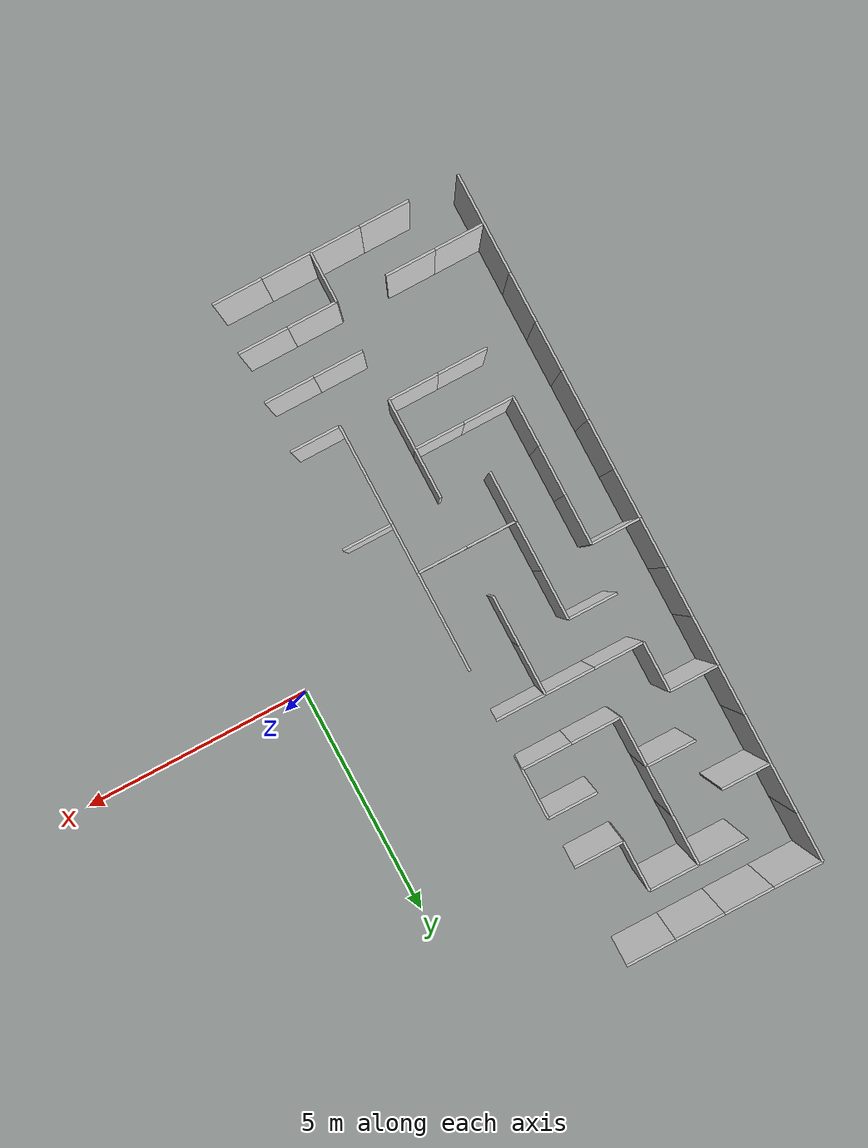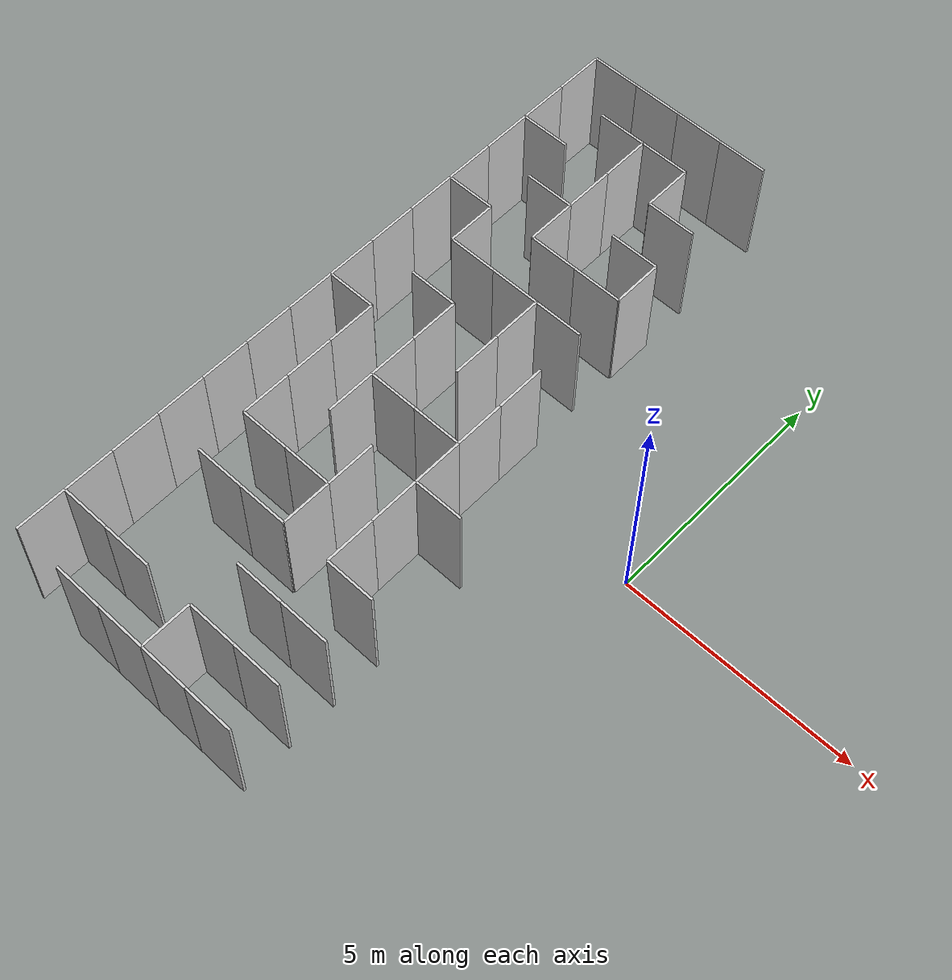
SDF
<sdf version="1.10">
 <world name="nidar_layer1_maze">
  <model name="vwall_00_00">
   <static>true</static>
   <pose>-7.3500 -6.8250 1.2500 0 0 0</pose>
   <link name="link">
    <collision name="collision"><geometry><box><size>0.0500 1.0500 2.5000</size></box></geometry></collision>
    <visual name="visual">
     <geometry><box><size>0.0500 1.0500 2.5000</size></box></geometry>
     <material><ambient>0.72 0.72 0.72 1</ambient><diffuse>0.82 0.82 0.82 1</diffuse></material>
    </visual>
   </link>
  </model>
  <model name="vwall_03_00">
   <static>true</static>
   <pose>-4.2000 -6.8250 1.2500 0 0 0</pose>
   <link name="link">
    <collision name="collision"><geometry><box><size>0.0500 1.0500 2.5000</size></box></geometry></collision>
    <visual name="visual">
     <geometry><box><size>0.0500 1.0500 2.5000</size></box></geometry>
     <material><ambient>0.72 0.72 0.72 1</ambient><diffuse>0.82 0.82 0.82 1</diffuse></material>
    </visual>
   </link>
  </model>
  <model name="vwall_00_01">
   <static>true</static>
   <pose>-7.3500 -5.7750 1.2500 0 0 0</pose>
   <link name="link">
    <collision name="collision"><geometry><box><size>0.0500 1.0500 2.5000</size></box></geometry></collision>
    <visual name="visual">
     <geometry><box><size>0.0500 1.0500 2.5000</size></box></geometry>
     <material><ambient>0.72 0.72 0.72 1</ambient><diffuse>0.82 0.82 0.82 1</diffuse></material>
    </visual>
   </link>
  </model>
  <model name="vwall_00_02">
   <static>true</static>
   <pose>-7.3500 -4.7250 1.2500 0 0 0</pose>
   <link name="link">
    <collision name="collision"><geometry><box><size>0.0500 1.0500 2.5000</size></box></geometry></collision>
    <visual name="visual">
     <geometry><box><size>0.0500 1.0500 2.5000</size></box></geometry>
     <material><ambient>0.72 0.72 0.72 1</ambient><diffuse>0.82 0.82 0.82 1</diffuse></material>
    </visual>
   </link>
  </model>
  <model name="vwall_00_03">
   <static>true</static>
   <pose>-7.3500 -3.6750 1.2500 0 0 0</pose>
   <link name="link">
    <collision name="collision"><geometry><box><size>0.0500 1.0500 2.5000</size></box></geometry></collision>
    <visual name="visual">
     <geometry><box><size>0.0500 1.0500 2.5000</size></box></geometry>
     <material><ambient>0.72 0.72 0.72 1</ambient><diffuse>0.82 0.82 0.82 1</diffuse></material>
    </visual>
   </link>
  </model>
  <model name="vwall_03_03">
   <static>true</static>
   <pose>-4.2000 -3.6750 1.2500 0 0 0</pose>
   <link name="link">
    <collision name="collision"><geometry><box><size>0.0500 1.0500 2.5000</size></box></geometry></collision>
    <visual name="visual">
     <geometry><box><size>0.0500 1.0500 2.5000</size></box></geometry>
     <material><ambient>0.72 0.72 0.72 1</ambient><diffuse>0.82 0.82 0.82 1</diffuse></material>
    </visual>
   </link>
  </model>
  <model name="vwall_04_03">
   <static>true</static>
   <pose>-3.1500 -3.6750 1.2500 0 0 0</pose>
   <link name="link">
    <collision name="collision"><geometry><box><size>0.0500 1.0500 2.5000</size></box></geometry></collision>
    <visual name="visual">
     <geometry><box><size>0.0500 1.0500 2.5000</size></box></geometry>
     <material><ambient>0.72 0.72 0.72 1</ambient><diffuse>0.82 0.82 0.82 1</diffuse></material>
    </visual>
   </link>
  </model>
  <model name="vwall_00_04">
   <static>true</static>
   <pose>-7.3500 -2.6250 1.2500 0 0 0</pose>
   <link name="link">
    <collision name="collision"><geometry><box><size>0.0500 1.0500 2.5000</size></box></geometry></collision>
    <visual name="visual">
     <geometry><box><size>0.0500 1.0500 2.5000</size></box></geometry>
     <material><ambient>0.72 0.72 0.72 1</ambient><diffuse>0.82 0.82 0.82 1</diffuse></material>
    </visual>
   </link>
  </model>
  <model name="vwall_01_04">
   <static>true</static>
   <pose>-6.3000 -2.6250 1.2500 0 0 0</pose>
   <link name="link">
    <collision name="collision"><geometry><box><size>0.0500 1.0500 2.5000</size></box></geometry></collision>
    <visual name="visual">
     <geometry><box><size>0.0500 1.0500 2.5000</size></box></geometry>
     <material><ambient>0.72 0.72 0.72 1</ambient><diffuse>0.82 0.82 0.82 1</diffuse></material>
    </visual>
   </link>
  </model>
  <model name="vwall_03_04">
   <static>true</static>
   <pose>-4.2000 -2.6250 1.2500 0 0 0</pose>
   <link name="link">
    <collision name="collision"><geometry><box><size>0.0500 1.0500 2.5000</size></box></geometry></collision>
    <visual name="visual">
     <geometry><box><size>0.0500 1.0500 2.5000</size></box></geometry>
     <material><ambient>0.72 0.72 0.72 1</ambient><diffuse>0.82 0.82 0.82 1</diffuse></material>
    </visual>
   </link>
  </model>
  <model name="vwall_04_04">
   <static>true</static>
   <pose>-3.1500 -2.6250 1.2500 0 0 0</pose>
   <link name="link">
    <collision name="collision"><geometry><box><size>0.0500 1.0500 2.5000</size></box></geometry></collision>
    <visual name="visual">
     <geometry><box><size>0.0500 1.0500 2.5000</size></box></geometry>
     <material><ambient>0.72 0.72 0.72 1</ambient><diffuse>0.82 0.82 0.82 1</diffuse></material>
    </visual>
   </link>
  </model>
  <model name="vwall_00_05">
   <static>true</static>
   <pose>-7.3500 -1.5750 1.2500 0 0 0</pose>
   <link name="link">
    <collision name="collision"><geometry><box><size>0.0500 1.0500 2.5000</size></box></geometry></collision>
    <visual name="visual">
     <geometry><box><size>0.0500 1.0500 2.5000</size></box></geometry>
     <material><ambient>0.72 0.72 0.72 1</ambient><diffuse>0.82 0.82 0.82 1</diffuse></material>
    </visual>
   </link>
  </model>
  <model name="vwall_01_05">
   <static>true</static>
   <pose>-6.3000 -1.5750 1.2500 0 0 0</pose>
   <link name="link">
    <collision name="collision"><geometry><box><size>0.0500 1.0500 2.5000</size></box></geometry></collision>
    <visual name="visual">
     <geometry><box><size>0.0500 1.0500 2.5000</size></box></geometry>
     <material><ambient>0.72 0.72 0.72 1</ambient><diffuse>0.82 0.82 0.82 1</diffuse></material>
    </visual>
   </link>
  </model>
  <model name="vwall_02_05">
   <static>true</static>
   <pose>-5.2500 -1.5750 1.2500 0 0 0</pose>
   <link name="link">
    <collision name="collision"><geometry><box><size>0.0500 1.0500 2.5000</size></box></geometry></collision>
    <visual name="visual">
     <geometry><box><size>0.0500 1.0500 2.5000</size></box></geometry>
     <material><ambient>0.72 0.72 0.72 1</ambient><diffuse>0.82 0.82 0.82 1</diffuse></material>
    </visual>
   </link>
  </model>
  <model name="vwall_04_05">
   <static>true</static>
   <pose>-3.1500 -1.5750 1.2500 0 0 0</pose>
   <link name="link">
    <collision name="collision"><geometry><box><size>0.0500 1.0500 2.5000</size></box></geometry></collision>
    <visual name="visual">
     <geometry><box><size>0.0500 1.0500 2.5000</size></box></geometry>
     <material><ambient>0.72 0.72 0.72 1</ambient><diffuse>0.82 0.82 0.82 1</diffuse></material>
    </visual>
   </link>
  </model>
  <model name="vwall_00_06">
   <static>true</static>
   <pose>-7.3500 -0.5250 1.2500 0 0 0</pose>
   <link name="link">
    <collision name="collision"><geometry><box><size>0.0500 1.0500 2.5000</size></box></geometry></collision>
    <visual name="visual">
     <geometry><box><size>0.0500 1.0500 2.5000</size></box></geometry>
     <material><ambient>0.72 0.72 0.72 1</ambient><diffuse>0.82 0.82 0.82 1</diffuse></material>
    </visual>
   </link>
  </model>
  <model name="vwall_01_06">
   <static>true</static>
   <pose>-6.3000 -0.5250 1.2500 0 0 0</pose>
   <link name="link">
    <collision name="collision"><geometry><box><size>0.0500 1.0500 2.5000</size></box></geometry></collision>
    <visual name="visual">
     <geometry><box><size>0.0500 1.0500 2.5000</size></box></geometry>
     <material><ambient>0.72 0.72 0.72 1</ambient><diffuse>0.82 0.82 0.82 1</diffuse></material>
    </visual>
   </link>
  </model>
  <model name="vwall_02_06">
   <static>true</static>
   <pose>-5.2500 -0.5250 1.2500 0 0 0</pose>
   <link name="link">
    <collision name="collision"><geometry><box><size>0.0500 1.0500 2.5000</size></box></geometry></collision>
    <visual name="visual">
     <geometry><box><size>0.0500 1.0500 2.5000</size></box></geometry>
     <material><ambient>0.72 0.72 0.72 1</ambient><diffuse>0.82 0.82 0.82 1</diffuse></material>
    </visual>
   </link>
  </model>
  <model name="vwall_04_06">
   <static>true</static>
   <pose>-3.1500 -0.5250 1.2500 0 0 0</pose>
   <link name="link">
    <collision name="collision"><geometry><box><size>0.0500 1.0500 2.5000</size></box></geometry></collision>
    <visual name="visual">
     <geometry><box><size>0.0500 1.0500 2.5000</size></box></geometry>
     <material><ambient>0.72 0.72 0.72 1</ambient><diffuse>0.82 0.82 0.82 1</diffuse></material>
    </visual>
   </link>
  </model>
  <model name="vwall_00_07">
   <static>true</static>
   <pose>-7.3500 0.5250 1.2500 0 0 0</pose>
   <link name="link">
    <collision name="collision"><geometry><box><size>0.0500 1.0500 2.5000</size></box></geometry></collision>
    <visual name="visual">
     <geometry><box><size>0.0500 1.0500 2.5000</size></box></geometry>
     <material><ambient>0.72 0.72 0.72 1</ambient><diffuse>0.82 0.82 0.82 1</diffuse></material>
    </visual>
   </link>
  </model>
  <model name="vwall_02_07">
   <static>true</static>
   <pose>-5.2500 0.5250 1.2500 0 0 0</pose>
   <link name="link">
    <collision name="collision"><geometry><box><size>0.0500 1.0500 2.5000</size></box></geometry></collision>
    <visual name="visual">
     <geometry><box><size>0.0500 1.0500 2.5000</size></box></geometry>
     <material><ambient>0.72 0.72 0.72 1</ambient><diffuse>0.82 0.82 0.82 1</diffuse></material>
    </visual>
   </link>
  </model>
  <model name="vwall_03_07">
   <static>true</static>
   <pose>-4.2000 0.5250 1.2500 0 0 0</pose>
   <link name="link">
    <collision name="collision"><geometry><box><size>0.0500 1.0500 2.5000</size></box></geometry></collision>
    <visual name="visual">
     <geometry><box><size>0.0500 1.0500 2.5000</size></box></geometry>
     <material><ambient>0.72 0.72 0.72 1</ambient><diffuse>0.82 0.82 0.82 1</diffuse></material>
    </visual>
   </link>
  </model>
  <model name="vwall_04_07">
   <static>true</static>
   <pose>-3.1500 0.5250 1.2500 0 0 0</pose>
   <link name="link">
    <collision name="collision"><geometry><box><size>0.0500 1.0500 2.5000</size></box></geometry></collision>
    <visual name="visual">
     <geometry><box><size>0.0500 1.0500 2.5000</size></box></geometry>
     <material><ambient>0.72 0.72 0.72 1</ambient><diffuse>0.82 0.82 0.82 1</diffuse></material>
    </visual>
   </link>
  </model>
  <model name="vwall_00_08">
   <static>true</static>
   <pose>-7.3500 1.5750 1.2500 0 0 0</pose>
   <link name="link">
    <collision name="collision"><geometry><box><size>0.0500 1.0500 2.5000</size></box></geometry></collision>
    <visual name="visual">
     <geometry><box><size>0.0500 1.0500 2.5000</size></box></geometry>
     <material><ambient>0.72 0.72 0.72 1</ambient><diffuse>0.82 0.82 0.82 1</diffuse></material>
    </visual>
   </link>
  </model>
  <model name="vwall_03_08">
   <static>true</static>
   <pose>-4.2000 1.5750 1.2500 0 0 0</pose>
   <link name="link">
    <collision name="collision"><geometry><box><size>0.0500 1.0500 2.5000</size></box></geometry></collision>
    <visual name="visual">
     <geometry><box><size>0.0500 1.0500 2.5000</size></box></geometry>
     <material><ambient>0.72 0.72 0.72 1</ambient><diffuse>0.82 0.82 0.82 1</diffuse></material>
    </visual>
   </link>
  </model>
  <model name="vwall_00_09">
   <static>true</static>
   <pose>-7.3500 2.6250 1.2500 0 0 0</pose>
   <link name="link">
    <collision name="collision"><geometry><box><size>0.0500 1.0500 2.5000</size></box></geometry></collision>
    <visual name="visual">
     <geometry><box><size>0.0500 1.0500 2.5000</size></box></geometry>
     <material><ambient>0.72 0.72 0.72 1</ambient><diffuse>0.82 0.82 0.82 1</diffuse></material>
    </visual>
   </link>
  </model>
  <model name="vwall_01_09">
   <static>true</static>
   <pose>-6.3000 2.6250 1.2500 0 0 0</pose>
   <link name="link">
    <collision name="collision"><geometry><box><size>0.0500 1.0500 2.5000</size></box></geometry></collision>
    <visual name="visual">
     <geometry><box><size>0.0500 1.0500 2.5000</size></box></geometry>
     <material><ambient>0.72 0.72 0.72 1</ambient><diffuse>0.82 0.82 0.82 1</diffuse></material>
    </visual>
   </link>
  </model>
  <model name="vwall_00_10">
   <static>true</static>
   <pose>-7.3500 3.6750 1.2500 0 0 0</pose>
   <link name="link">
    <collision name="collision"><geometry><box><size>0.0500 1.0500 2.5000</size></box></geometry></collision>
    <visual name="visual">
     <geometry><box><size>0.0500 1.0500 2.5000</size></box></geometry>
     <material><ambient>0.72 0.72 0.72 1</ambient><diffuse>0.82 0.82 0.82 1</diffuse></material>
    </visual>
   </link>
  </model>
  <model name="vwall_02_10">
   <static>true</static>
   <pose>-5.2500 3.6750 1.2500 0 0 0</pose>
   <link name="link">
    <collision name="collision"><geometry><box><size>0.0500 1.0500 2.5000</size></box></geometry></collision>
    <visual name="visual">
     <geometry><box><size>0.0500 1.0500 2.5000</size></box></geometry>
     <material><ambient>0.72 0.72 0.72 1</ambient><diffuse>0.82 0.82 0.82 1</diffuse></material>
    </visual>
   </link>
  </model>
  <model name="vwall_04_10">
   <static>true</static>
   <pose>-3.1500 3.6750 1.2500 0 0 0</pose>
   <link name="link">
    <collision name="collision"><geometry><box><size>0.0500 1.0500 2.5000</size></box></geometry></collision>
    <visual name="visual">
     <geometry><box><size>0.0500 1.0500 2.5000</size></box></geometry>
     <material><ambient>0.72 0.72 0.72 1</ambient><diffuse>0.82 0.82 0.82 1</diffuse></material>
    </visual>
   </link>
  </model>
  <model name="vwall_00_11">
   <static>true</static>
   <pose>-7.3500 4.7250 1.2500 0 0 0</pose>
   <link name="link">
    <collision name="collision"><geometry><box><size>0.0500 1.0500 2.5000</size></box></geometry></collision>
    <visual name="visual">
     <geometry><box><size>0.0500 1.0500 2.5000</size></box></geometry>
     <material><ambient>0.72 0.72 0.72 1</ambient><diffuse>0.82 0.82 0.82 1</diffuse></material>
    </visual>
   </link>
  </model>
  <model name="vwall_02_11">
   <static>true</static>
   <pose>-5.2500 4.7250 1.2500 0 0 0</pose>
   <link name="link">
    <collision name="collision"><geometry><box><size>0.0500 1.0500 2.5000</size></box></geometry></collision>
    <visual name="visual">
     <geometry><box><size>0.0500 1.0500 2.5000</size></box></geometry>
     <material><ambient>0.72 0.72 0.72 1</ambient><diffuse>0.82 0.82 0.82 1</diffuse></material>
    </visual>
   </link>
  </model>
  <model name="vwall_00_12">
   <static>true</static>
   <pose>-7.3500 5.7750 1.2500 0 0 0</pose>
   <link name="link">
    <collision name="collision"><geometry><box><size>0.0500 1.0500 2.5000</size></box></geometry></collision>
    <visual name="visual">
     <geometry><box><size>0.0500 1.0500 2.5000</size></box></geometry>
     <material><ambient>0.72 0.72 0.72 1</ambient><diffuse>0.82 0.82 0.82 1</diffuse></material>
    </visual>
   </link>
  </model>
  <model name="vwall_02_12">
   <static>true</static>
   <pose>-5.2500 5.7750 1.2500 0 0 0</pose>
   <link name="link">
    <collision name="collision"><geometry><box><size>0.0500 1.0500 2.5000</size></box></geometry></collision>
    <visual name="visual">
     <geometry><box><size>0.0500 1.0500 2.5000</size></box></geometry>
     <material><ambient>0.72 0.72 0.72 1</ambient><diffuse>0.82 0.82 0.82 1</diffuse></material>
    </visual>
   </link>
  </model>
  <model name="vwall_03_12">
   <static>true</static>
   <pose>-4.2000 5.7750 1.2500 0 0 0</pose>
   <link name="link">
    <collision name="collision"><geometry><box><size>0.0500 1.0500 2.5000</size></box></geometry></collision>
    <visual name="visual">
     <geometry><box><size>0.0500 1.0500 2.5000</size></box></geometry>
     <material><ambient>0.72 0.72 0.72 1</ambient><diffuse>0.82 0.82 0.82 1</diffuse></material>
    </visual>
   </link>
  </model>
  <model name="vwall_00_13">
   <static>true</static>
   <pose>-7.3500 6.8250 1.2500 0 0 0</pose>
   <link name="link">
    <collision name="collision"><geometry><box><size>0.0500 1.0500 2.5000</size></box></geometry></collision>
    <visual name="visual">
     <geometry><box><size>0.0500 1.0500 2.5000</size></box></geometry>
     <material><ambient>0.72 0.72 0.72 1</ambient><diffuse>0.82 0.82 0.82 1</diffuse></material>
    </visual>
   </link>
  </model>
  <model name="hwall_01_00">
   <static>true</static>
   <pose>-5.7750 -7.3500 1.2500 0 0 0</pose>
   <link name="link">
    <collision name="collision"><geometry><box><size>1.0500 0.0500 2.5000</size></box></geometry></collision>
    <visual name="visual">
     <geometry><box><size>1.0500 0.0500 2.5000</size></box></geometry>
     <material><ambient>0.72 0.72 0.72 1</ambient><diffuse>0.82 0.82 0.82 1</diffuse></material>
    </visual>
   </link>
  </model>
  <model name="hwall_02_00">
   <static>true</static>
   <pose>-4.7250 -7.3500 1.2500 0 0 0</pose>
   <link name="link">
    <collision name="collision"><geometry><box><size>1.0500 0.0500 2.5000</size></box></geometry></collision>
    <visual name="visual">
     <geometry><box><size>1.0500 0.0500 2.5000</size></box></geometry>
     <material><ambient>0.72 0.72 0.72 1</ambient><diffuse>0.82 0.82 0.82 1</diffuse></material>
    </visual>
   </link>
  </model>
  <model name="hwall_03_00">
   <static>true</static>
   <pose>-3.6750 -7.3500 1.2500 0 0 0</pose>
   <link name="link">
    <collision name="collision"><geometry><box><size>1.0500 0.0500 2.5000</size></box></geometry></collision>
    <visual name="visual">
     <geometry><box><size>1.0500 0.0500 2.5000</size></box></geometry>
     <material><ambient>0.72 0.72 0.72 1</ambient><diffuse>0.82 0.82 0.82 1</diffuse></material>
    </visual>
   </link>
  </model>
  <model name="hwall_04_00">
   <static>true</static>
   <pose>-2.6250 -7.3500 1.2500 0 0 0</pose>
   <link name="link">
    <collision name="collision"><geometry><box><size>1.0500 0.0500 2.5000</size></box></geometry></collision>
    <visual name="visual">
     <geometry><box><size>1.0500 0.0500 2.5000</size></box></geometry>
     <material><ambient>0.72 0.72 0.72 1</ambient><diffuse>0.82 0.82 0.82 1</diffuse></material>
    </visual>
   </link>
  </model>
  <model name="hwall_00_01">
   <static>true</static>
   <pose>-6.8250 -6.3000 1.2500 0 0 0</pose>
   <link name="link">
    <collision name="collision"><geometry><box><size>1.0500 0.0500 2.5000</size></box></geometry></collision>
    <visual name="visual">
     <geometry><box><size>1.0500 0.0500 2.5000</size></box></geometry>
     <material><ambient>0.72 0.72 0.72 1</ambient><diffuse>0.82 0.82 0.82 1</diffuse></material>
    </visual>
   </link>
  </model>
  <model name="hwall_01_01">
   <static>true</static>
   <pose>-5.7750 -6.3000 1.2500 0 0 0</pose>
   <link name="link">
    <collision name="collision"><geometry><box><size>1.0500 0.0500 2.5000</size></box></geometry></collision>
    <visual name="visual">
     <geometry><box><size>1.0500 0.0500 2.5000</size></box></geometry>
     <material><ambient>0.72 0.72 0.72 1</ambient><diffuse>0.82 0.82 0.82 1</diffuse></material>
    </visual>
   </link>
  </model>
  <model name="hwall_03_01">
   <static>true</static>
   <pose>-3.6750 -6.3000 1.2500 0 0 0</pose>
   <link name="link">
    <collision name="collision"><geometry><box><size>1.0500 0.0500 2.5000</size></box></geometry></collision>
    <visual name="visual">
     <geometry><box><size>1.0500 0.0500 2.5000</size></box></geometry>
     <material><ambient>0.72 0.72 0.72 1</ambient><diffuse>0.82 0.82 0.82 1</diffuse></material>
    </visual>
   </link>
  </model>
  <model name="hwall_04_01">
   <static>true</static>
   <pose>-2.6250 -6.3000 1.2500 0 0 0</pose>
   <link name="link">
    <collision name="collision"><geometry><box><size>1.0500 0.0500 2.5000</size></box></geometry></collision>
    <visual name="visual">
     <geometry><box><size>1.0500 0.0500 2.5000</size></box></geometry>
     <material><ambient>0.72 0.72 0.72 1</ambient><diffuse>0.82 0.82 0.82 1</diffuse></material>
    </visual>
   </link>
  </model>
  <model name="hwall_03_02">
   <static>true</static>
   <pose>-3.6750 -5.2500 1.2500 0 0 0</pose>
   <link name="link">
    <collision name="collision"><geometry><box><size>1.0500 0.0500 2.5000</size></box></geometry></collision>
    <visual name="visual">
     <geometry><box><size>1.0500 0.0500 2.5000</size></box></geometry>
     <material><ambient>0.72 0.72 0.72 1</ambient><diffuse>0.82 0.82 0.82 1</diffuse></material>
    </visual>
   </link>
  </model>
  <model name="hwall_04_02">
   <static>true</static>
   <pose>-2.6250 -5.2500 1.2500 0 0 0</pose>
   <link name="link">
    <collision name="collision"><geometry><box><size>1.0500 0.0500 2.5000</size></box></geometry></collision>
    <visual name="visual">
     <geometry><box><size>1.0500 0.0500 2.5000</size></box></geometry>
     <material><ambient>0.72 0.72 0.72 1</ambient><diffuse>0.82 0.82 0.82 1</diffuse></material>
    </visual>
   </link>
  </model>
  <model name="hwall_01_03">
   <static>true</static>
   <pose>-5.7750 -4.2000 1.2500 0 0 0</pose>
   <link name="link">
    <collision name="collision"><geometry><box><size>1.0500 0.0500 2.5000</size></box></geometry></collision>
    <visual name="visual">
     <geometry><box><size>1.0500 0.0500 2.5000</size></box></geometry>
     <material><ambient>0.72 0.72 0.72 1</ambient><diffuse>0.82 0.82 0.82 1</diffuse></material>
    </visual>
   </link>
  </model>
  <model name="hwall_02_03">
   <static>true</static>
   <pose>-4.7250 -4.2000 1.2500 0 0 0</pose>
   <link name="link">
    <collision name="collision"><geometry><box><size>1.0500 0.0500 2.5000</size></box></geometry></collision>
    <visual name="visual">
     <geometry><box><size>1.0500 0.0500 2.5000</size></box></geometry>
     <material><ambient>0.72 0.72 0.72 1</ambient><diffuse>0.82 0.82 0.82 1</diffuse></material>
    </visual>
   </link>
  </model>
  <model name="hwall_04_03">
   <static>true</static>
   <pose>-2.6250 -4.2000 1.2500 0 0 0</pose>
   <link name="link">
    <collision name="collision"><geometry><box><size>1.0500 0.0500 2.5000</size></box></geometry></collision>
    <visual name="visual">
     <geometry><box><size>1.0500 0.0500 2.5000</size></box></geometry>
     <material><ambient>0.72 0.72 0.72 1</ambient><diffuse>0.82 0.82 0.82 1</diffuse></material>
    </visual>
   </link>
  </model>
  <model name="hwall_01_04">
   <static>true</static>
   <pose>-5.7750 -3.1500 1.2500 0 0 0</pose>
   <link name="link">
    <collision name="collision"><geometry><box><size>1.0500 0.0500 2.5000</size></box></geometry></collision>
    <visual name="visual">
     <geometry><box><size>1.0500 0.0500 2.5000</size></box></geometry>
     <material><ambient>0.72 0.72 0.72 1</ambient><diffuse>0.82 0.82 0.82 1</diffuse></material>
    </visual>
   </link>
  </model>
  <model name="hwall_02_04">
   <static>true</static>
   <pose>-4.7250 -3.1500 1.2500 0 0 0</pose>
   <link name="link">
    <collision name="collision"><geometry><box><size>1.0500 0.0500 2.5000</size></box></geometry></collision>
    <visual name="visual">
     <geometry><box><size>1.0500 0.0500 2.5000</size></box></geometry>
     <material><ambient>0.72 0.72 0.72 1</ambient><diffuse>0.82 0.82 0.82 1</diffuse></material>
    </visual>
   </link>
  </model>
  <model name="hwall_04_05">
   <static>true</static>
   <pose>-2.6250 -2.1000 1.2500 0 0 0</pose>
   <link name="link">
    <collision name="collision"><geometry><box><size>1.0500 0.0500 2.5000</size></box></geometry></collision>
    <visual name="visual">
     <geometry><box><size>1.0500 0.0500 2.5000</size></box></geometry>
     <material><ambient>0.72 0.72 0.72 1</ambient><diffuse>0.82 0.82 0.82 1</diffuse></material>
    </visual>
   </link>
  </model>
  <model name="hwall_02_06">
   <static>true</static>
   <pose>-4.7250 -1.0500 1.2500 0 0 0</pose>
   <link name="link">
    <collision name="collision"><geometry><box><size>1.0500 0.0500 2.5000</size></box></geometry></collision>
    <visual name="visual">
     <geometry><box><size>1.0500 0.0500 2.5000</size></box></geometry>
     <material><ambient>0.72 0.72 0.72 1</ambient><diffuse>0.82 0.82 0.82 1</diffuse></material>
    </visual>
   </link>
  </model>
  <model name="hwall_03_06">
   <static>true</static>
   <pose>-3.6750 -1.0500 1.2500 0 0 0</pose>
   <link name="link">
    <collision name="collision"><geometry><box><size>1.0500 0.0500 2.5000</size></box></geometry></collision>
    <visual name="visual">
     <geometry><box><size>1.0500 0.0500 2.5000</size></box></geometry>
     <material><ambient>0.72 0.72 0.72 1</ambient><diffuse>0.82 0.82 0.82 1</diffuse></material>
    </visual>
   </link>
  </model>
  <model name="hwall_00_07">
   <static>true</static>
   <pose>-6.8250 0.0000 1.2500 0 0 0</pose>
   <link name="link">
    <collision name="collision"><geometry><box><size>1.0500 0.0500 2.5000</size></box></geometry></collision>
    <visual name="visual">
     <geometry><box><size>1.0500 0.0500 2.5000</size></box></geometry>
     <material><ambient>0.72 0.72 0.72 1</ambient><diffuse>0.82 0.82 0.82 1</diffuse></material>
    </visual>
   </link>
  </model>
  <model name="hwall_01_08">
   <static>true</static>
   <pose>-5.7750 1.0500 1.2500 0 0 0</pose>
   <link name="link">
    <collision name="collision"><geometry><box><size>1.0500 0.0500 2.5000</size></box></geometry></collision>
    <visual name="visual">
     <geometry><box><size>1.0500 0.0500 2.5000</size></box></geometry>
     <material><ambient>0.72 0.72 0.72 1</ambient><diffuse>0.82 0.82 0.82 1</diffuse></material>
    </visual>
   </link>
  </model>
  <model name="hwall_01_09">
   <static>true</static>
   <pose>-5.7750 2.1000 1.2500 0 0 0</pose>
   <link name="link">
    <collision name="collision"><geometry><box><size>1.0500 0.0500 2.5000</size></box></geometry></collision>
    <visual name="visual">
     <geometry><box><size>1.0500 0.0500 2.5000</size></box></geometry>
     <material><ambient>0.72 0.72 0.72 1</ambient><diffuse>0.82 0.82 0.82 1</diffuse></material>
    </visual>
   </link>
  </model>
  <model name="hwall_02_09">
   <static>true</static>
   <pose>-4.7250 2.1000 1.2500 0 0 0</pose>
   <link name="link">
    <collision name="collision"><geometry><box><size>1.0500 0.0500 2.5000</size></box></geometry></collision>
    <visual name="visual">
     <geometry><box><size>1.0500 0.0500 2.5000</size></box></geometry>
     <material><ambient>0.72 0.72 0.72 1</ambient><diffuse>0.82 0.82 0.82 1</diffuse></material>
    </visual>
   </link>
  </model>
  <model name="hwall_03_09">
   <static>true</static>
   <pose>-3.6750 2.1000 1.2500 0 0 0</pose>
   <link name="link">
    <collision name="collision"><geometry><box><size>1.0500 0.0500 2.5000</size></box></geometry></collision>
    <visual name="visual">
     <geometry><box><size>1.0500 0.0500 2.5000</size></box></geometry>
     <material><ambient>0.72 0.72 0.72 1</ambient><diffuse>0.82 0.82 0.82 1</diffuse></material>
    </visual>
   </link>
  </model>
  <model name="hwall_00_10">
   <static>true</static>
   <pose>-6.8250 3.1500 1.2500 0 0 0</pose>
   <link name="link">
    <collision name="collision"><geometry><box><size>1.0500 0.0500 2.5000</size></box></geometry></collision>
    <visual name="visual">
     <geometry><box><size>1.0500 0.0500 2.5000</size></box></geometry>
     <material><ambient>0.72 0.72 0.72 1</ambient><diffuse>0.82 0.82 0.82 1</diffuse></material>
    </visual>
   </link>
  </model>
  <model name="hwall_02_10">
   <static>true</static>
   <pose>-4.7250 3.1500 1.2500 0 0 0</pose>
   <link name="link">
    <collision name="collision"><geometry><box><size>1.0500 0.0500 2.5000</size></box></geometry></collision>
    <visual name="visual">
     <geometry><box><size>1.0500 0.0500 2.5000</size></box></geometry>
     <material><ambient>0.72 0.72 0.72 1</ambient><diffuse>0.82 0.82 0.82 1</diffuse></material>
    </visual>
   </link>
  </model>
  <model name="hwall_03_10">
   <static>true</static>
   <pose>-3.6750 3.1500 1.2500 0 0 0</pose>
   <link name="link">
    <collision name="collision"><geometry><box><size>1.0500 0.0500 2.5000</size></box></geometry></collision>
    <visual name="visual">
     <geometry><box><size>1.0500 0.0500 2.5000</size></box></geometry>
     <material><ambient>0.72 0.72 0.72 1</ambient><diffuse>0.82 0.82 0.82 1</diffuse></material>
    </visual>
   </link>
  </model>
  <model name="hwall_01_11">
   <static>true</static>
   <pose>-5.7750 4.2000 1.2500 0 0 0</pose>
   <link name="link">
    <collision name="collision"><geometry><box><size>1.0500 0.0500 2.5000</size></box></geometry></collision>
    <visual name="visual">
     <geometry><box><size>1.0500 0.0500 2.5000</size></box></geometry>
     <material><ambient>0.72 0.72 0.72 1</ambient><diffuse>0.82 0.82 0.82 1</diffuse></material>
    </visual>
   </link>
  </model>
  <model name="hwall_03_11">
   <static>true</static>
   <pose>-3.6750 4.2000 1.2500 0 0 0</pose>
   <link name="link">
    <collision name="collision"><geometry><box><size>1.0500 0.0500 2.5000</size></box></geometry></collision>
    <visual name="visual">
     <geometry><box><size>1.0500 0.0500 2.5000</size></box></geometry>
     <material><ambient>0.72 0.72 0.72 1</ambient><diffuse>0.82 0.82 0.82 1</diffuse></material>
    </visual>
   </link>
  </model>
  <model name="hwall_00_12">
   <static>true</static>
   <pose>-6.8250 5.2500 1.2500 0 0 0</pose>
   <link name="link">
    <collision name="collision"><geometry><box><size>1.0500 0.0500 2.5000</size></box></geometry></collision>
    <visual name="visual">
     <geometry><box><size>1.0500 0.0500 2.5000</size></box></geometry>
     <material><ambient>0.72 0.72 0.72 1</ambient><diffuse>0.82 0.82 0.82 1</diffuse></material>
    </visual>
   </link>
  </model>
  <model name="hwall_03_12">
   <static>true</static>
   <pose>-3.6750 5.2500 1.2500 0 0 0</pose>
   <link name="link">
    <collision name="collision"><geometry><box><size>1.0500 0.0500 2.5000</size></box></geometry></collision>
    <visual name="visual">
     <geometry><box><size>1.0500 0.0500 2.5000</size></box></geometry>
     <material><ambient>0.72 0.72 0.72 1</ambient><diffuse>0.82 0.82 0.82 1</diffuse></material>
    </visual>
   </link>
  </model>
  <model name="hwall_01_13">
   <static>true</static>
   <pose>-5.7750 6.3000 1.2500 0 0 0</pose>
   <link name="link">
    <collision name="collision"><geometry><box><size>1.0500 0.0500 2.5000</size></box></geometry></collision>
    <visual name="visual">
     <geometry><box><size>1.0500 0.0500 2.5000</size></box></geometry>
     <material><ambient>0.72 0.72 0.72 1</ambient><diffuse>0.82 0.82 0.82 1</diffuse></material>
    </visual>
   </link>
  </model>
  <model name="hwall_02_13">
   <static>true</static>
   <pose>-4.7250 6.3000 1.2500 0 0 0</pose>
   <link name="link">
    <collision name="collision"><geometry><box><size>1.0500 0.0500 2.5000</size></box></geometry></collision>
    <visual name="visual">
     <geometry><box><size>1.0500 0.0500 2.5000</size></box></geometry>
     <material><ambient>0.72 0.72 0.72 1</ambient><diffuse>0.82 0.82 0.82 1</diffuse></material>
    </visual>
   </link>
  </model>
  <model name="hwall_00_14">
   <static>true</static>
   <pose>-6.8250 7.3500 1.2500 0 0 0</pose>
   <link name="link">
    <collision name="collision"><geometry><box><size>1.0500 0.0500 2.5000</size></box></geometry></collision>
    <visual name="visual">
     <geometry><box><size>1.0500 0.0500 2.5000</size></box></geometry>
     <material><ambient>0.72 0.72 0.72 1</ambient><diffuse>0.82 0.82 0.82 1</diffuse></material>
    </visual>
   </link>
  </model>
  <model name="hwall_01_14">
   <static>true</static>
   <pose>-5.7750 7.3500 1.2500 0 0 0</pose>
   <link name="link">
    <collision name="collision"><geometry><box><size>1.0500 0.0500 2.5000</size></box></geometry></collision>
    <visual name="visual">
     <geometry><box><size>1.0500 0.0500 2.5000</size></box></geometry>
     <material><ambient>0.72 0.72 0.72 1</ambient><diffuse>0.82 0.82 0.82 1</diffuse></material>
    </visual>
   </link>
  </model>
  <model name="hwall_02_14">
   <static>true</static>
   <pose>-4.7250 7.3500 1.2500 0 0 0</pose>
   <link name="link">
    <collision name="collision"><geometry><box><size>1.0500 0.0500 2.5000</size></box></geometry></collision>
    <visual name="visual">
     <geometry><box><size>1.0500 0.0500 2.5000</size></box></geometry>
     <material><ambient>0.72 0.72 0.72 1</ambient><diffuse>0.82 0.82 0.82 1</diffuse></material>
    </visual>
   </link>
  </model>
  <model name="hwall_03_14">
   <static>true</static>
   <pose>-3.6750 7.3500 1.2500 0 0 0</pose>
   <link name="link">
    <collision name="collision"><geometry><box><size>1.0500 0.0500 2.5000</size></box></geometry></collision>
    <visual name="visual">
     <geometry><box><size>1.0500 0.0500 2.5000</size></box></geometry>
     <material><ambient>0.72 0.72 0.72 1</ambient><diffuse>0.82 0.82 0.82 1</diffuse></material>
    </visual>
   </link>
  </model>
 </world>
</sdf>
